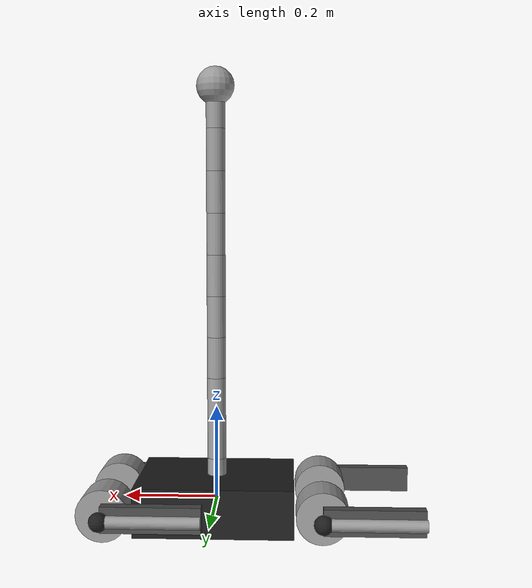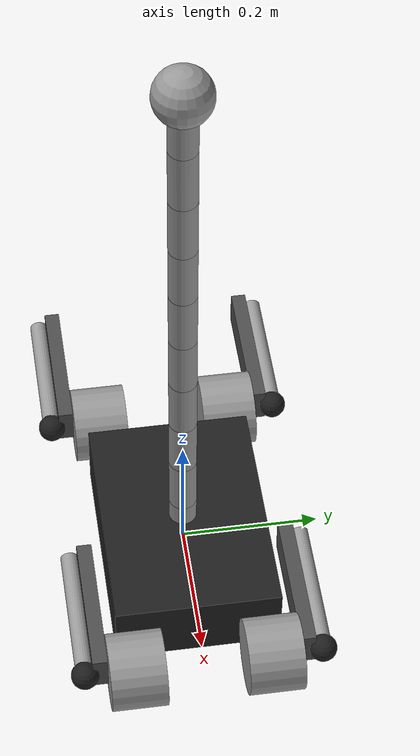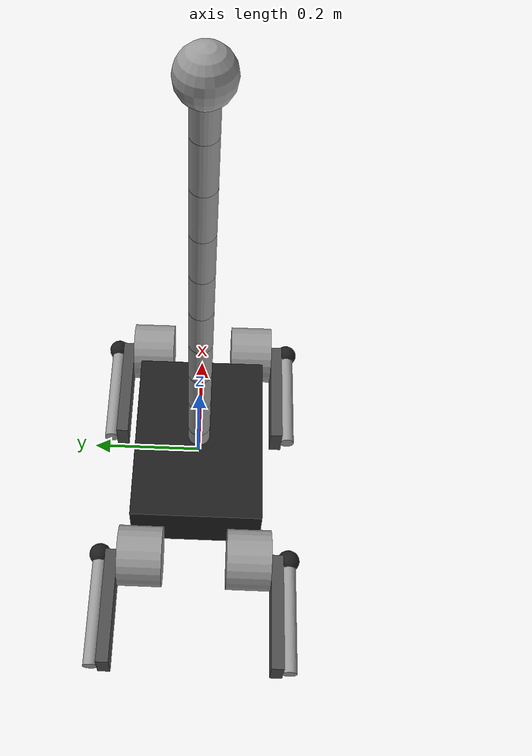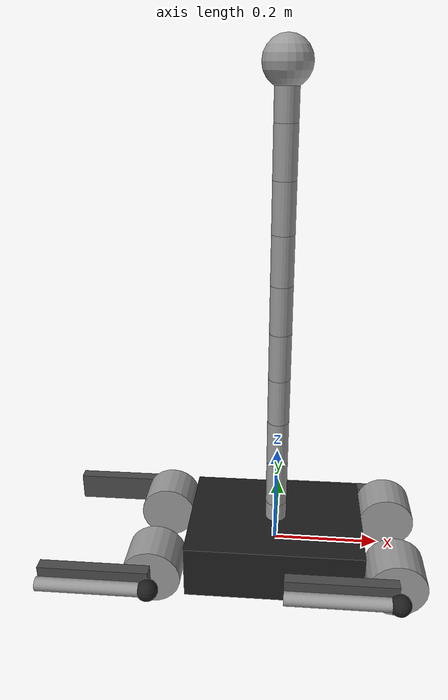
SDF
<sdf version='1.6'>
  <model name='spirit'>
    <link name='body'>
      <pose frame=''>0 0 0 0 -0 0</pose>
      <inertial>
        <pose frame=''>0 0 0 0 -0 0</pose>
        <mass>7.388</mass>
        <inertia>
          <ixx>0.0642435</ixx>
          <ixy>0</ixy>
          <ixz>0</ixz>
          <iyy>0.128487</iyy>
          <iyz>0</iyz>
          <izz>0.128487</izz>
        </inertia>
      </inertial>
      <collision name='body_collision'>
        <pose frame=''>0 0 0 0 -0 0</pose>
        <geometry>
          <box>
            <size>0.335 0.24 0.104</size>
          </box>
        </geometry>
        <surface>
          <contact>
            <ode/>
          </contact>
          <friction>
            <ode/>
          </friction>
        </surface>
      </collision>
      <visual name='body_visual'>
        <pose frame=''>0 0 0 0 -0 0</pose>
        <geometry>
          <box>
            <size>0.335 0.24 0.104</size>
          </box>
        </geometry>
        <material>
          <script>
            <name>Gazebo/Black</name>
            <uri>file://media/materials/scripts/gazebo.material</uri>
          </script>
        </material>
      </visual>
      <gravity>1</gravity>
      <velocity_decay/>
    </link>
    <link name='hip2'>
      <pose frame=''>0.2263 -0.07 0 0 -0 0</pose>
      <inertial>
        <pose frame=''>0 -0.028 0 1.5708 -0 0</pose>
        <mass>0.575</mass>
        <inertia>
          <ixx>0.00074151</ixx>
          <ixy>0</ixy>
          <ixz>0</ixz>
          <iyy>0.00074151</iyy>
          <iyz>0</iyz>
          <izz>0.000869688</izz>
        </inertia>
      </inertial>
      <collision name='hip2_collision'>
        <pose frame=''>0 -0.028 0 1.5708 -0 0</pose>
        <geometry>
          <cylinder>
            <length>0.08</length>
            <radius>0.055</radius>
          </cylinder>
        </geometry>
        <surface>
          <contact>
            <ode/>
          </contact>
          <friction>
            <ode/>
          </friction>
        </surface>
      </collision>
      <visual name='hip2_visual'>
        <pose frame=''>0 -0.028 0 1.5708 -0 0</pose>
        <geometry>
          <cylinder>
            <length>0.08</length>
            <radius>0.055</radius>
          </cylinder>
        </geometry>
        <material>
          <script>
            <name>Gazebo/Grey</name>
            <uri>file://media/materials/scripts/gazebo.material</uri>
          </script>
        </material>
      </visual>
      <gravity>1</gravity>
      <velocity_decay/>
    </link>
    <joint name='10' type='revolute'>
      <child>hip2</child>
      <parent>body</parent>
      <axis>
        <xyz>1 0 0</xyz>
        <limit>
          <lower>-0.707</lower>
          <upper>0.707</upper>
          <effort>21</effort>
          <velocity>37.7</velocity>
        </limit>
        <dynamics>
          <damping>0</damping>
          <friction>0</friction>
          <spring_reference>0</spring_reference>
          <spring_stiffness>0</spring_stiffness>
        </dynamics>
        <use_parent_model_frame>0</use_parent_model_frame>
      </axis>
    </joint>
    <link name='upper2'>
      <pose frame=''>0.2263 -0.17098 0 0 -0 0</pose>
      <inertial>
        <pose frame=''>-0.103 0.022 0 0 -0 0</pose>
        <mass>0.792</mass>
        <inertia>
          <ixx>0.000231594</ixx>
          <ixy>0</ixy>
          <ixz>0</ixz>
          <iyy>0.00300043</iyy>
          <iyz>0</iyz>
          <izz>0.00283272</izz>
        </inertia>
      </inertial>
      <collision name='upper2_collision'>
        <pose frame=''>-0.103 0.022 0 0 -0 0</pose>
        <geometry>
          <box>
            <size>0.206 0.022 0.055</size>
          </box>
        </geometry>
        <surface>
          <contact>
            <ode/>
          </contact>
          <friction>
            <ode/>
          </friction>
        </surface>
      </collision>
      <visual name='upper2_visual'>
        <pose frame=''>-0.103 0.022 0 0 -0 0</pose>
        <geometry>
          <box>
            <size>0.206 0.022 0.055</size>
          </box>
        </geometry>
        <material>
          <script>
            <name>Gazebo/DarkGrey</name>
            <uri>file://media/materials/scripts/gazebo.material</uri>
          </script>
        </material>
      </visual>
      <gravity>1</gravity>
      <velocity_decay/>
      <self_collide>0</self_collide>
    </link>
    <joint name='4' type='revolute'>
      <child>upper2</child>
      <parent>hip2</parent>
      <axis>
        <xyz>0 -1 0</xyz>
        <limit>
          <lower>-1.57</lower>
          <upper>3.14</upper>
          <effort>21</effort>
          <velocity>37.7</velocity>
        </limit>
        <dynamics>
          <damping>0</damping>
          <friction>0</friction>
          <spring_reference>0</spring_reference>
          <spring_stiffness>0</spring_stiffness>
        </dynamics>
        <use_parent_model_frame>0</use_parent_model_frame>
      </axis>
    </joint>
    <link name='lower2'>
      <pose frame=''>0.0203 -0.17098 0 0 -0 0</pose>
      <inertial>
        <pose frame=''>0.103 0 0 0 -0 0</pose>
        <mass>0.075</mass>
        <inertia>
          <ixx>2.19313e-05</ixx>
          <ixy>0</ixy>
          <ixz>0</ixz>
          <iyy>0.000284131</iyy>
          <iyz>0</iyz>
          <izz>0.00026825</izz>
        </inertia>
      </inertial>
      <collision name='lower2_collision'>
        <pose frame=''>0.103 0 0 3.14159 1.57079 3.14159</pose>
        <geometry>
          <cylinder>
            <length>0.206</length>
            <radius>0.013</radius>
          </cylinder>
        </geometry>
        <surface>
          <contact>
            <ode/>
          </contact>
          <friction>
            <ode/>
          </friction>
        </surface>
      </collision>
      <visual name='lower2_visual'>
        <pose frame=''>0.103 0 0 3.14159 1.57079 3.14159</pose>
        <geometry>
          <cylinder>
            <length>0.206</length>
            <radius>0.013</radius>
          </cylinder>
        </geometry>
        <material>
          <script>
            <name>Gazebo/Grey</name>
            <uri>file://media/materials/scripts/gazebo.material</uri>
          </script>
        </material>
      </visual>
      <gravity>1</gravity>
      <velocity_decay/>
    </link>
    <joint name='5' type='revolute'>
      <child>lower2</child>
      <parent>upper2</parent>
      <axis>
        <xyz>0 1 0</xyz>
        <limit>
          <lower>-6.28</lower>
          <upper>6.28</upper>
          <effort>32</effort>
          <velocity>25.1</velocity>
        </limit>
        <dynamics>
          <damping>0</damping>
          <friction>0</friction>
          <spring_reference>0</spring_reference>
          <spring_stiffness>0</spring_stiffness>
        </dynamics>
        <use_parent_model_frame>0</use_parent_model_frame>
      </axis>
    </joint>
    <link name='toe2'>
      <pose frame=''>0.2263 -0.17098 0 0 -0 0</pose>
      <inertial>
        <pose frame=''>0 0 0 0 -0 0</pose>
        <mass>0.015</mass>
        <inertia>
          <ixx>2.5e-05</ixx>
          <ixy>0</ixy>
          <ixz>0</ixz>
          <iyy>2.5e-05</iyy>
          <iyz>0</iyz>
          <izz>2.5e-05</izz>
        </inertia>
      </inertial>
      <collision name='toe2_collision'>
        <pose frame=''>0 0 0 0 -0 0</pose>
        <geometry>
          <sphere>
            <radius>0.02</radius>
          </sphere>
        </geometry>
        <surface>
          <bounce>
            <restitution_coefficient>0</restitution_coefficient>
            <threshold>1e+06</threshold>
          </bounce>
          <friction>
            <torsional>
              <coefficient>0.3</coefficient>
            </torsional>
            <ode>
              <mu>100</mu>
              <mu2>50</mu2>
            </ode>
            <bullet>
              <rolling_friction>0.3</rolling_friction>
              <friction2>50</friction2>
            </bullet>
          </friction>
          <contact>
            <bullet>
              <kp>30000</kp>
              <kd>1000</kd>
              <split_impulse>1</split_impulse>
              <split_impulse_penetration_threshold>-0.01</split_impulse_penetration_threshold>
            </bullet>
            <ode>
              <kp>30000</kp>
              <kd>1000</kd>
            </ode>
          </contact>
        </surface>
      </collision>
      <visual name='toe2_visual'>
        <pose frame=''>0 0 0 0 -0 0</pose>
        <geometry>
          <sphere>
            <radius>0.02</radius>
          </sphere>
        </geometry>
        <material>
          <script>
            <name>Gazebo/Black</name>
            <uri>file://media/materials/scripts/gazebo.material</uri>
          </script>
        </material>
      </visual>
      <velocity_decay/>
      <self_collide>0</self_collide>
      <gravity>1</gravity>
      <velocity_decay/>
      <sensor name='toe2_contact' type='contact'>
        <plugin name='toe2_plugin' filename='libgazebo_ros_bumper.so'>
          <alwaysOn>1</alwaysOn>
          <updateRate>500</updateRate>
          <bumperTopicName>gazebo/toe2_contact_state</bumperTopicName>
          <frameName>world</frameName>
        </plugin>
        <contact>
          <collision>toe2_collision</collision>
          <topic>__default_topic__</topic>
        </contact>
        <update_rate>500</update_rate>
      </sensor>
    </link>
    <joint name='jtoe2' type='fixed'>
      <child>toe2</child>
      <parent>lower2</parent>
      <axis>
        <dynamics>
          <spring_reference>0</spring_reference>
          <spring_stiffness>0</spring_stiffness>
        </dynamics>
        <xyz>0 0 1</xyz>
        <use_parent_model_frame>0</use_parent_model_frame>
        <limit>
          <lower>-1e+16</lower>
          <upper>1e+16</upper>
        </limit>
      </axis>
      <physics>
        <ode>
          <limit>
            <cfm>0</cfm>
            <erp>0.2</erp>
          </limit>
        </ode>
      </physics>
    </joint>
    <link name='hip3'>
      <pose frame=''>-0.2263 -0.07 0 0 -0 0</pose>
      <inertial>
        <pose frame=''>0 -0.028 0 1.5708 -0 0</pose>
        <mass>0.575</mass>
        <inertia>
          <ixx>0.00074151</ixx>
          <ixy>0</ixy>
          <ixz>0</ixz>
          <iyy>0.00074151</iyy>
          <iyz>0</iyz>
          <izz>0.000869688</izz>
        </inertia>
      </inertial>
      <collision name='hip3_collision'>
        <pose frame=''>0 -0.028 0 1.5708 -0 0</pose>
        <geometry>
          <cylinder>
            <length>0.08</length>
            <radius>0.055</radius>
          </cylinder>
        </geometry>
        <surface>
          <contact>
            <ode/>
          </contact>
          <friction>
            <ode/>
          </friction>
        </surface>
      </collision>
      <visual name='hip3_visual'>
        <pose frame=''>0 -0.028 0 1.5708 -0 0</pose>
        <geometry>
          <cylinder>
            <length>0.08</length>
            <radius>0.055</radius>
          </cylinder>
        </geometry>
        <material>
          <script>
            <name>Gazebo/Grey</name>
            <uri>file://media/materials/scripts/gazebo.material</uri>
          </script>
        </material>
      </visual>
      <gravity>1</gravity>
      <velocity_decay/>
    </link>
    <joint name='11' type='revolute'>
      <child>hip3</child>
      <parent>body</parent>
      <axis>
        <xyz>1 0 0</xyz>
        <limit>
          <lower>-0.707</lower>
          <upper>0.707</upper>
          <effort>21</effort>
          <velocity>37.7</velocity>
        </limit>
        <dynamics>
          <damping>0</damping>
          <friction>0</friction>
          <spring_reference>0</spring_reference>
          <spring_stiffness>0</spring_stiffness>
        </dynamics>
        <use_parent_model_frame>0</use_parent_model_frame>
      </axis>
    </joint>
    <link name='upper3'>
      <pose frame=''>-0.2263 -0.17098 0 0 -0 0</pose>
      <inertial>
        <pose frame=''>-0.103 0.022 0 0 -0 0</pose>
        <mass>0.792</mass>
        <inertia>
          <ixx>0.000231594</ixx>
          <ixy>0</ixy>
          <ixz>0</ixz>
          <iyy>0.00300043</iyy>
          <iyz>0</iyz>
          <izz>0.00283272</izz>
        </inertia>
      </inertial>
      <collision name='upper3_collision'>
        <pose frame=''>-0.103 0.022 0 0 -0 0</pose>
        <geometry>
          <box>
            <size>0.206 0.022 0.055</size>
          </box>
        </geometry>
        <surface>
          <contact>
            <ode/>
          </contact>
          <friction>
            <ode/>
          </friction>
        </surface>
      </collision>
      <visual name='upper3_visual'>
        <pose frame=''>-0.103 0.022 0 0 -0 0</pose>
        <geometry>
          <box>
            <size>0.206 0.022 0.055</size>
          </box>
        </geometry>
        <material>
          <script>
            <name>Gazebo/DarkGrey</name>
            <uri>file://media/materials/scripts/gazebo.material</uri>
          </script>
        </material>
      </visual>
      <gravity>1</gravity>
      <velocity_decay/>
      <self_collide>0</self_collide>
    </link>
    <joint name='6' type='revolute'>
      <child>upper3</child>
      <parent>hip3</parent>
      <axis>
        <xyz>0 -1 0</xyz>
        <limit>
          <lower>-1.57</lower>
          <upper>3.14</upper>
          <effort>21</effort>
          <velocity>37.7</velocity>
        </limit>
        <dynamics>
          <damping>0</damping>
          <friction>0</friction>
          <spring_reference>0</spring_reference>
          <spring_stiffness>0</spring_stiffness>
        </dynamics>
        <use_parent_model_frame>0</use_parent_model_frame>
      </axis>
    </joint>
    <link name='lower3'>
      <pose frame=''>-0.4323 -0.17098 0 0 -0 0</pose>
      <inertial>
        <pose frame=''>0.103 0 0 0 -0 0</pose>
        <mass>0.075</mass>
        <inertia>
          <ixx>2.19313e-05</ixx>
          <ixy>0</ixy>
          <ixz>0</ixz>
          <iyy>0.000284131</iyy>
          <iyz>0</iyz>
          <izz>0.00026825</izz>
        </inertia>
      </inertial>
      <collision name='lower3_collision'>
        <pose frame=''>0.103 0 0 3.14159 1.57079 3.14159</pose>
        <geometry>
          <cylinder>
            <length>0.206</length>
            <radius>0.013</radius>
          </cylinder>
        </geometry>
        <surface>
          <contact>
            <ode/>
          </contact>
          <friction>
            <ode/>
          </friction>
        </surface>
      </collision>
      <visual name='lower3_visual'>
        <pose frame=''>0.103 0 0 3.14159 1.57079 3.14159</pose>
        <geometry>
          <cylinder>
            <length>0.206</length>
            <radius>0.013</radius>
          </cylinder>
        </geometry>
        <material>
          <script>
            <name>Gazebo/Grey</name>
            <uri>file://media/materials/scripts/gazebo.material</uri>
          </script>
        </material>
      </visual>
      <gravity>1</gravity>
      <velocity_decay/>
    </link>
    <joint name='7' type='revolute'>
      <child>lower3</child>
      <parent>upper3</parent>
      <axis>
        <xyz>0 1 0</xyz>
        <limit>
          <lower>-6.28</lower>
          <upper>6.28</upper>
          <effort>32</effort>
          <velocity>25.1</velocity>
        </limit>
        <dynamics>
          <damping>0</damping>
          <friction>0</friction>
          <spring_reference>0</spring_reference>
          <spring_stiffness>0</spring_stiffness>
        </dynamics>
        <use_parent_model_frame>0</use_parent_model_frame>
      </axis>
    </joint>
    <link name='toe3'>
      <pose frame=''>-0.2263 -0.17098 0 0 -0 0</pose>
      <inertial>
        <pose frame=''>0 0 0 0 -0 0</pose>
        <mass>0.015</mass>
        <inertia>
          <ixx>2.5e-05</ixx>
          <ixy>0</ixy>
          <ixz>0</ixz>
          <iyy>2.5e-05</iyy>
          <iyz>0</iyz>
          <izz>2.5e-05</izz>
        </inertia>
      </inertial>
      <collision name='toe3_collision'>
        <pose frame=''>0 0 0 0 -0 0</pose>
        <geometry>
          <sphere>
            <radius>0.02</radius>
          </sphere>
        </geometry>
        <surface>
          <bounce>
            <restitution_coefficient>0</restitution_coefficient>
            <threshold>1e+06</threshold>
          </bounce>
          <friction>
            <torsional>
              <coefficient>0.3</coefficient>
            </torsional>
            <ode>
              <mu>100</mu>
              <mu2>50</mu2>
            </ode>
            <bullet>
              <rolling_friction>0.3</rolling_friction>
              <friction2>50</friction2>
            </bullet>
          </friction>
          <contact>
            <bullet>
              <kp>30000</kp>
              <kd>1000</kd>
              <split_impulse>1</split_impulse>
              <split_impulse_penetration_threshold>-0.01</split_impulse_penetration_threshold>
            </bullet>
            <ode>
              <kp>30000</kp>
              <kd>1000</kd>
            </ode>
          </contact>
        </surface>
      </collision>
      <visual name='toe3_visual'>
        <pose frame=''>0 0 0 0 -0 0</pose>
        <geometry>
          <sphere>
            <radius>0.02</radius>
          </sphere>
        </geometry>
        <material>
          <script>
            <name>Gazebo/Black</name>
            <uri>file://media/materials/scripts/gazebo.material</uri>
          </script>
        </material>
      </visual>
      <velocity_decay/>
      <self_collide>0</self_collide>
      <gravity>1</gravity>
      <velocity_decay/>
      <sensor name='toe3_contact' type='contact'>
        <plugin name='toe3_plugin' filename='libgazebo_ros_bumper.so'>
          <alwaysOn>1</alwaysOn>
          <updateRate>500</updateRate>
          <bumperTopicName>gazebo/toe3_contact_state</bumperTopicName>
          <frameName>world</frameName>
        </plugin>
        <contact>
          <collision>toe3_collision</collision>
          <topic>__default_topic__</topic>
        </contact>
        <update_rate>500</update_rate>
      </sensor>
    </link>
    <joint name='jtoe3' type='fixed'>
      <child>toe3</child>
      <parent>lower3</parent>
      <axis>
        <dynamics>
          <spring_reference>0</spring_reference>
          <spring_stiffness>0</spring_stiffness>
        </dynamics>
        <xyz>0 0 1</xyz>
        <use_parent_model_frame>0</use_parent_model_frame>
        <limit>
          <lower>-1e+16</lower>
          <upper>1e+16</upper>
        </limit>
      </axis>
      <physics>
        <ode>
          <limit>
            <cfm>0</cfm>
            <erp>0.2</erp>
          </limit>
        </ode>
      </physics>
    </joint>
    <link name='hip0'>
      <pose frame=''>0.2263 0.07 0 0 -0 0</pose>
      <inertial>
        <pose frame=''>0 0.028 0 1.5708 -0 0</pose>
        <mass>0.575</mass>
        <inertia>
          <ixx>0.00074151</ixx>
          <ixy>0</ixy>
          <ixz>0</ixz>
          <iyy>0.00074151</iyy>
          <iyz>0</iyz>
          <izz>0.000869688</izz>
        </inertia>
      </inertial>
      <collision name='hip0_collision'>
        <pose frame=''>0 0.028 0 1.5708 -0 0</pose>
        <geometry>
          <cylinder>
            <length>0.08</length>
            <radius>0.055</radius>
          </cylinder>
        </geometry>
        <surface>
          <contact>
            <ode/>
          </contact>
          <friction>
            <ode/>
          </friction>
        </surface>
      </collision>
      <visual name='hip0_visual'>
        <pose frame=''>0 0.028 0 1.5708 -0 0</pose>
        <geometry>
          <cylinder>
            <length>0.08</length>
            <radius>0.055</radius>
          </cylinder>
        </geometry>
        <material>
          <script>
            <name>Gazebo/Grey</name>
            <uri>file://media/materials/scripts/gazebo.material</uri>
          </script>
        </material>
      </visual>
      <gravity>1</gravity>
      <velocity_decay/>
    </link>
    <joint name='8' type='revolute'>
      <child>hip0</child>
      <parent>body</parent>
      <axis>
        <xyz>1 0 0</xyz>
        <limit>
          <lower>-0.707</lower>
          <upper>0.707</upper>
          <effort>21</effort>
          <velocity>37.7</velocity>
        </limit>
        <dynamics>
          <damping>0</damping>
          <friction>0</friction>
          <spring_reference>0</spring_reference>
          <spring_stiffness>0</spring_stiffness>
        </dynamics>
        <use_parent_model_frame>0</use_parent_model_frame>
      </axis>
    </joint>
    <link name='upper0'>
      <pose frame=''>0.2263 0.17098 0 0 -0 0</pose>
      <inertial>
        <pose frame=''>-0.103 -0.022 0 0 -0 0</pose>
        <mass>0.792</mass>
        <inertia>
          <ixx>0.000231594</ixx>
          <ixy>0</ixy>
          <ixz>0</ixz>
          <iyy>0.00300043</iyy>
          <iyz>0</iyz>
          <izz>0.00283272</izz>
        </inertia>
      </inertial>
      <collision name='upper0_collision'>
        <pose frame=''>-0.103 -0.022 0 0 -0 0</pose>
        <geometry>
          <box>
            <size>0.206 0.022 0.055</size>
          </box>
        </geometry>
        <surface>
          <contact>
            <ode/>
          </contact>
          <friction>
            <ode/>
          </friction>
        </surface>
      </collision>
      <visual name='upper0_visual'>
        <pose frame=''>-0.103 -0.022 0 0 -0 0</pose>
        <geometry>
          <box>
            <size>0.206 0.022 0.055</size>
          </box>
        </geometry>
        <material>
          <script>
            <name>Gazebo/DarkGrey</name>
            <uri>file://media/materials/scripts/gazebo.material</uri>
          </script>
        </material>
      </visual>
      <gravity>1</gravity>
      <velocity_decay/>
      <self_collide>0</self_collide>
    </link>
    <joint name='0' type='revolute'>
      <child>upper0</child>
      <parent>hip0</parent>
      <axis>
        <xyz>0 -1 0</xyz>
        <limit>
          <lower>-1.57</lower>
          <upper>3.14</upper>
          <effort>21</effort>
          <velocity>37.7</velocity>
        </limit>
        <dynamics>
          <damping>0</damping>
          <friction>0</friction>
          <spring_reference>0</spring_reference>
          <spring_stiffness>0</spring_stiffness>
        </dynamics>
        <use_parent_model_frame>0</use_parent_model_frame>
      </axis>
    </joint>
    <link name='lower0'>
      <pose frame=''>0.0203 0.17098 0 0 -0 0</pose>
      <inertial>
        <pose frame=''>0.103 0 0 0 -0 0</pose>
        <mass>0.075</mass>
        <inertia>
          <ixx>2.19313e-05</ixx>
          <ixy>0</ixy>
          <ixz>0</ixz>
          <iyy>0.000284131</iyy>
          <iyz>0</iyz>
          <izz>0.00026825</izz>
        </inertia>
      </inertial>
      <collision name='lower0_collision'>
        <pose frame=''>0.103 0 0 3.14159 1.57079 3.14159</pose>
        <geometry>
          <cylinder>
            <length>0.206</length>
            <radius>0.013</radius>
          </cylinder>
        </geometry>
        <surface>
          <contact>
            <ode/>
          </contact>
          <friction>
            <ode/>
          </friction>
        </surface>
      </collision>
      <visual name='lower0_visual'>
        <pose frame=''>0.103 0 0 3.14159 1.57079 3.14159</pose>
        <geometry>
          <cylinder>
            <length>0.206</length>
            <radius>0.013</radius>
          </cylinder>
        </geometry>
        <material>
          <script>
            <name>Gazebo/Grey</name>
            <uri>file://media/materials/scripts/gazebo.material</uri>
          </script>
        </material>
      </visual>
      <gravity>1</gravity>
      <velocity_decay/>
    </link>
    <joint name='1' type='revolute'>
      <child>lower0</child>
      <parent>upper0</parent>
      <axis>
        <xyz>0 1 0</xyz>
        <limit>
          <lower>-6.28</lower>
          <upper>6.28</upper>
          <effort>32</effort>
          <velocity>25.1</velocity>
        </limit>
        <dynamics>
          <damping>0</damping>
          <friction>0</friction>
          <spring_reference>0</spring_reference>
          <spring_stiffness>0</spring_stiffness>
        </dynamics>
        <use_parent_model_frame>0</use_parent_model_frame>
      </axis>
    </joint>
    <link name='toe0'>
      <pose frame=''>0.2263 0.17098 0 0 -0 0</pose>
      <inertial>
        <pose frame=''>0 0 0 0 -0 0</pose>
        <mass>0.015</mass>
        <inertia>
          <ixx>2.5e-05</ixx>
          <ixy>0</ixy>
          <ixz>0</ixz>
          <iyy>2.5e-05</iyy>
          <iyz>0</iyz>
          <izz>2.5e-05</izz>
        </inertia>
      </inertial>
      <collision name='toe0_collision'>
        <pose frame=''>0 0 0 0 -0 0</pose>
        <geometry>
          <sphere>
            <radius>0.02</radius>
          </sphere>
        </geometry>
        <surface>
          <bounce>
            <restitution_coefficient>0</restitution_coefficient>
            <threshold>1e+06</threshold>
          </bounce>
          <friction>
            <torsional>
              <coefficient>0.3</coefficient>
            </torsional>
            <ode>
              <mu>100</mu>
              <mu2>50</mu2>
            </ode>
            <bullet>
              <rolling_friction>0.3</rolling_friction>
              <friction2>50</friction2>
            </bullet>
          </friction>
          <contact>
            <bullet>
              <kp>30000</kp>
              <kd>1000</kd>
              <split_impulse>1</split_impulse>
              <split_impulse_penetration_threshold>-0.01</split_impulse_penetration_threshold>
            </bullet>
            <ode>
              <kp>30000</kp>
              <kd>1000</kd>
            </ode>
          </contact>
        </surface>
      </collision>
      <visual name='toe0_visual'>
        <pose frame=''>0 0 0 0 -0 0</pose>
        <geometry>
          <sphere>
            <radius>0.02</radius>
          </sphere>
        </geometry>
        <material>
          <script>
            <name>Gazebo/Black</name>
            <uri>file://media/materials/scripts/gazebo.material</uri>
          </script>
        </material>
      </visual>
      <velocity_decay/>
      <self_collide>0</self_collide>
      <gravity>1</gravity>
      <velocity_decay/>
      <sensor name='toe0_contact' type='contact'>
        <plugin name='toe0_plugin' filename='libgazebo_ros_bumper.so'>
          <alwaysOn>1</alwaysOn>
          <updateRate>500</updateRate>
          <bumperTopicName>gazebo/toe0_contact_state</bumperTopicName>
          <frameName>world</frameName>
        </plugin>
        <contact>
          <collision>toe0_collision</collision>
          <topic>__default_topic__</topic>
        </contact>
        <update_rate>500</update_rate>
      </sensor>
    </link>
    <joint name='jtoe0' type='fixed'>
      <child>toe0</child>
      <parent>lower0</parent>
      <axis>
        <dynamics>
          <spring_reference>0</spring_reference>
          <spring_stiffness>0</spring_stiffness>
        </dynamics>
        <xyz>0 0 1</xyz>
        <use_parent_model_frame>0</use_parent_model_frame>
        <limit>
          <lower>-1e+16</lower>
          <upper>1e+16</upper>
        </limit>
      </axis>
      <physics>
        <ode>
          <limit>
            <cfm>0</cfm>
            <erp>0.2</erp>
          </limit>
        </ode>
      </physics>
    </joint>
    <link name='hip1'>
      <pose frame=''>-0.2263 0.07 0 0 -0 0</pose>
      <inertial>
        <pose frame=''>0 0.028 0 1.5708 -0 0</pose>
        <mass>0.575</mass>
        <inertia>
          <ixx>0.00074151</ixx>
          <ixy>0</ixy>
          <ixz>0</ixz>
          <iyy>0.00074151</iyy>
          <iyz>0</iyz>
          <izz>0.000869688</izz>
        </inertia>
      </inertial>
      <collision name='hip1_collision'>
        <pose frame=''>0 0.028 0 1.5708 -0 0</pose>
        <geometry>
          <cylinder>
            <length>0.08</length>
            <radius>0.055</radius>
          </cylinder>
        </geometry>
        <surface>
          <contact>
            <ode/>
          </contact>
          <friction>
            <ode/>
          </friction>
        </surface>
      </collision>
      <visual name='hip1_visual'>
        <pose frame=''>0 0.028 0 1.5708 -0 0</pose>
        <geometry>
          <cylinder>
            <length>0.08</length>
            <radius>0.055</radius>
          </cylinder>
        </geometry>
        <material>
          <script>
            <name>Gazebo/Grey</name>
            <uri>file://media/materials/scripts/gazebo.material</uri>
          </script>
        </material>
      </visual>
      <gravity>1</gravity>
      <velocity_decay/>
    </link>
    <joint name='9' type='revolute'>
      <child>hip1</child>
      <parent>body</parent>
      <axis>
        <xyz>1 0 0</xyz>
        <limit>
          <lower>-0.707</lower>
          <upper>0.707</upper>
          <effort>21</effort>
          <velocity>37.7</velocity>
        </limit>
        <dynamics>
          <damping>0</damping>
          <friction>0</friction>
          <spring_reference>0</spring_reference>
          <spring_stiffness>0</spring_stiffness>
        </dynamics>
        <use_parent_model_frame>0</use_parent_model_frame>
      </axis>
    </joint>
    <link name='upper1'>
      <pose frame=''>-0.2263 0.17098 0 0 -0 0</pose>
      <inertial>
        <pose frame=''>-0.103 -0.022 0 0 -0 0</pose>
        <mass>0.792</mass>
        <inertia>
          <ixx>0.000231594</ixx>
          <ixy>0</ixy>
          <ixz>0</ixz>
          <iyy>0.00300043</iyy>
          <iyz>0</iyz>
          <izz>0.00283272</izz>
        </inertia>
      </inertial>
      <collision name='upper1_collision'>
        <pose frame=''>-0.103 -0.022 0 0 -0 0</pose>
        <geometry>
          <box>
            <size>0.206 0.022 0.055</size>
          </box>
        </geometry>
        <surface>
          <contact>
            <ode/>
          </contact>
          <friction>
            <ode/>
          </friction>
        </surface>
      </collision>
      <visual name='upper1_visual'>
        <pose frame=''>-0.103 -0.022 0 0 -0 0</pose>
        <geometry>
          <box>
            <size>0.206 0.022 0.055</size>
          </box>
        </geometry>
        <material>
          <script>
            <name>Gazebo/DarkGrey</name>
            <uri>file://media/materials/scripts/gazebo.material</uri>
          </script>
        </material>
      </visual>
      <gravity>1</gravity>
      <velocity_decay/>
      <self_collide>0</self_collide>
    </link>
    <joint name='2' type='revolute'>
      <child>upper1</child>
      <parent>hip1</parent>
      <axis>
        <xyz>0 -1 0</xyz>
        <limit>
          <lower>-1.57</lower>
          <upper>3.14</upper>
          <effort>21</effort>
          <velocity>37.7</velocity>
        </limit>
        <dynamics>
          <damping>0</damping>
          <friction>0</friction>
          <spring_reference>0</spring_reference>
          <spring_stiffness>0</spring_stiffness>
        </dynamics>
        <use_parent_model_frame>0</use_parent_model_frame>
      </axis>
    </joint>
    <link name='lower1'>
      <pose frame=''>-0.4323 0.17098 0 0 -0 0</pose>
      <inertial>
        <pose frame=''>0.103 0 0 0 -0 0</pose>
        <mass>0.075</mass>
        <inertia>
          <ixx>2.19313e-05</ixx>
          <ixy>0</ixy>
          <ixz>0</ixz>
          <iyy>0.000284131</iyy>
          <iyz>0</iyz>
          <izz>0.00026825</izz>
        </inertia>
      </inertial>
      <collision name='lower1_collision'>
        <pose frame=''>0.103 0 0 3.14159 1.57079 3.14159</pose>
        <geometry>
          <cylinder>
            <length>0.206</length>
            <radius>0.013</radius>
          </cylinder>
        </geometry>
        <surface>
          <contact>
            <ode/>
          </contact>
          <friction>
            <ode/>
          </friction>
        </surface>
      </collision>
      <visual name='lower1_visual'>
        <pose frame=''>0.103 0 0 3.14159 1.57079 3.14159</pose>
        <geometry>
          <cylinder>
            <length>0.206</length>
            <radius>0.013</radius>
          </cylinder>
        </geometry>
        <material>
          <script>
            <name>Gazebo/Grey</name>
            <uri>file://media/materials/scripts/gazebo.material</uri>
          </script>
        </material>
      </visual>
      <gravity>1</gravity>
      <velocity_decay/>
    </link>
    <joint name='3' type='revolute'>
      <child>lower1</child>
      <parent>upper1</parent>
      <axis>
        <xyz>0 1 0</xyz>
        <limit>
          <lower>-6.28</lower>
          <upper>6.28</upper>
          <effort>32</effort>
          <velocity>25.1</velocity>
        </limit>
        <dynamics>
          <damping>0</damping>
          <friction>0</friction>
          <spring_reference>0</spring_reference>
          <spring_stiffness>0</spring_stiffness>
        </dynamics>
        <use_parent_model_frame>0</use_parent_model_frame>
      </axis>
    </joint>
    <link name='toe1'>
      <pose frame=''>-0.2263 0.17098 0 0 -0 0</pose>
      <inertial>
        <pose frame=''>0 0 0 0 -0 0</pose>
        <mass>0.015</mass>
        <inertia>
          <ixx>2.5e-05</ixx>
          <ixy>0</ixy>
          <ixz>0</ixz>
          <iyy>2.5e-05</iyy>
          <iyz>0</iyz>
          <izz>2.5e-05</izz>
        </inertia>
      </inertial>
      <collision name='toe1_collision'>
        <pose frame=''>0 0 0 0 -0 0</pose>
        <geometry>
          <sphere>
            <radius>0.02</radius>
          </sphere>
        </geometry>
        <surface>
          <bounce>
            <restitution_coefficient>0</restitution_coefficient>
            <threshold>1e+06</threshold>
          </bounce>
          <friction>
            <torsional>
              <coefficient>0.3</coefficient>
            </torsional>
            <ode>
              <mu>100</mu>
              <mu2>50</mu2>
            </ode>
            <bullet>
              <rolling_friction>0.3</rolling_friction>
              <friction2>50</friction2>
            </bullet>
          </friction>
          <contact>
            <bullet>
              <kp>30000</kp>
              <kd>1000</kd>
              <split_impulse>1</split_impulse>
              <split_impulse_penetration_threshold>-0.01</split_impulse_penetration_threshold>
            </bullet>
            <ode>
              <kp>30000</kp>
              <kd>1000</kd>
            </ode>
          </contact>
        </surface>
      </collision>
      <visual name='toe1_visual'>
        <pose frame=''>0 0 0 0 -0 0</pose>
        <geometry>
          <sphere>
            <radius>0.02</radius>
          </sphere>
        </geometry>
        <material>
          <script>
            <name>Gazebo/Black</name>
            <uri>file://media/materials/scripts/gazebo.material</uri>
          </script>
        </material>
      </visual>
      <velocity_decay/>
      <self_collide>0</self_collide>
      <gravity>1</gravity>
      <velocity_decay/>
      <sensor name='toe1_contact' type='contact'>
        <plugin name='toe1_plugin' filename='libgazebo_ros_bumper.so'>
          <alwaysOn>1</alwaysOn>
          <updateRate>500</updateRate>
          <bumperTopicName>gazebo/toe1_contact_state</bumperTopicName>
          <frameName>world</frameName>
        </plugin>
        <contact>
          <collision>toe1_collision</collision>
          <topic>__default_topic__</topic>
        </contact>
        <update_rate>500</update_rate>
      </sensor>
    </link>
    <joint name='jtoe1' type='fixed'>
      <child>toe1</child>
      <parent>lower1</parent>
      <axis>
        <dynamics>
          <spring_reference>0</spring_reference>
          <spring_stiffness>0</spring_stiffness>
        </dynamics>
        <xyz>0 0 1</xyz>
        <use_parent_model_frame>0</use_parent_model_frame>
        <limit>
          <lower>-1e+16</lower>
          <upper>1e+16</upper>
        </limit>
      </axis>
      <physics>
        <ode>
          <limit>
            <cfm>0</cfm>
            <erp>0.2</erp>
          </limit>
        </ode>
      </physics>
    </joint>
    <link name='tail_link_0'>
      <pose frame=''>0 0 0 0 -0 0</pose>
      <inertial>
        <pose frame=''>0 0 0.04408 0 -0 0</pose>
        <mass>0.001</mass>
        <inertia>
          <ixx>1e-06</ixx>
          <ixy>0</ixy>
          <ixz>0</ixz>
          <iyy>1e-06</iyy>
          <iyz>0</iyz>
          <izz>1e-06</izz>
        </inertia>
      </inertial>
      <visual name='tail_link_0_visual'>
        <pose frame=''>0 0 0.04408 0 -0 0</pose>
        <geometry>
          <cylinder>
            <length>0.08816</length>
            <radius>0.02</radius>
          </cylinder>
        </geometry>
        <material>
          <script>
            <name>Gazebo/Gray</name>
            <uri>file://media/materials/scripts/gazebo.material</uri>
          </script>
        </material>
      </visual>
      <gravity>1</gravity>
      <velocity_decay/>
    </link>
    <joint name='body_tail_joint_0' type='revolute'>
      <child>tail_link_0</child>
      <parent>body</parent>
      <axis>
        <xyz>0 1 0</xyz>
        <limit>
          <lower>-1.57</lower>
          <upper>1.57</upper>
          <effort>50</effort>
          <velocity>40</velocity>
        </limit>
        <dynamics>
          <damping>0</damping>
          <friction>0</friction>
          <spring_reference>0</spring_reference>
          <spring_stiffness>0</spring_stiffness>
        </dynamics>
        <use_parent_model_frame>0</use_parent_model_frame>
      </axis>
    </joint>
    <link name='tail_link_1'>
      <pose frame=''>0 0 0.08816 0 -0 0</pose>
      <inertial>
        <pose frame=''>0 0 0.04408 0 -0 0</pose>
        <mass>0.001</mass>
        <inertia>
          <ixx>1e-06</ixx>
          <ixy>0</ixy>
          <ixz>0</ixz>
          <iyy>1e-06</iyy>
          <iyz>0</iyz>
          <izz>1e-06</izz>
        </inertia>
      </inertial>
      <visual name='tail_link_1_visual'>
        <pose frame=''>0 0 0.04408 0 -0 0</pose>
        <geometry>
          <cylinder>
            <length>0.08816</length>
            <radius>0.02</radius>
          </cylinder>
        </geometry>
        <material>
          <script>
            <name>Gazebo/Gray</name>
            <uri>file://media/materials/scripts/gazebo.material</uri>
          </script>
        </material>
      </visual>
      <gravity>1</gravity>
      <velocity_decay/>
    </link>
    <joint name='body_tail_joint_1' type='revolute'>
      <child>tail_link_1</child>
      <parent>tail_link_0</parent>
      <axis>
        <xyz>0 1 0</xyz>
        <limit>
          <lower>-1.57</lower>
          <upper>1.57</upper>
          <effort>50</effort>
          <velocity>40</velocity>
        </limit>
        <dynamics>
          <damping>0</damping>
          <friction>0</friction>
          <spring_reference>0</spring_reference>
          <spring_stiffness>0</spring_stiffness>
        </dynamics>
        <use_parent_model_frame>0</use_parent_model_frame>
      </axis>
    </joint>
    <link name='tail_link_2'>
      <pose frame=''>0 0 0.17632 0 -0 0</pose>
      <inertial>
        <pose frame=''>0 0 0.04408 0 -0 0</pose>
        <mass>0.001</mass>
        <inertia>
          <ixx>1e-06</ixx>
          <ixy>0</ixy>
          <ixz>0</ixz>
          <iyy>1e-06</iyy>
          <iyz>0</iyz>
          <izz>1e-06</izz>
        </inertia>
      </inertial>
      <visual name='tail_link_2_visual'>
        <pose frame=''>0 0 0.04408 0 -0 0</pose>
        <geometry>
          <cylinder>
            <length>0.08816</length>
            <radius>0.02</radius>
          </cylinder>
        </geometry>
        <material>
          <script>
            <name>Gazebo/Gray</name>
            <uri>file://media/materials/scripts/gazebo.material</uri>
          </script>
        </material>
      </visual>
      <gravity>1</gravity>
      <velocity_decay/>
    </link>
    <joint name='body_tail_joint_2' type='revolute'>
      <child>tail_link_2</child>
      <parent>tail_link_1</parent>
      <axis>
        <xyz>0 1 0</xyz>
        <limit>
          <lower>-1.57</lower>
          <upper>1.57</upper>
          <effort>50</effort>
          <velocity>40</velocity>
        </limit>
        <dynamics>
          <damping>0</damping>
          <friction>0</friction>
          <spring_reference>0</spring_reference>
          <spring_stiffness>0</spring_stiffness>
        </dynamics>
        <use_parent_model_frame>0</use_parent_model_frame>
      </axis>
    </joint>
    <link name='tail_link_3'>
      <pose frame=''>0 0 0.26448 0 -0 0</pose>
      <inertial>
        <pose frame=''>0 0 0.04408 0 -0 0</pose>
        <mass>0.001</mass>
        <inertia>
          <ixx>1e-06</ixx>
          <ixy>0</ixy>
          <ixz>0</ixz>
          <iyy>1e-06</iyy>
          <iyz>0</iyz>
          <izz>1e-06</izz>
        </inertia>
      </inertial>
      <visual name='tail_link_3_visual'>
        <pose frame=''>0 0 0.04408 0 -0 0</pose>
        <geometry>
          <cylinder>
            <length>0.08816</length>
            <radius>0.02</radius>
          </cylinder>
        </geometry>
        <material>
          <script>
            <name>Gazebo/Gray</name>
            <uri>file://media/materials/scripts/gazebo.material</uri>
          </script>
        </material>
      </visual>
      <gravity>1</gravity>
      <velocity_decay/>
    </link>
    <joint name='body_tail_joint_3' type='revolute'>
      <child>tail_link_3</child>
      <parent>tail_link_2</parent>
      <axis>
        <xyz>0 1 0</xyz>
        <limit>
          <lower>-1.57</lower>
          <upper>1.57</upper>
          <effort>50</effort>
          <velocity>40</velocity>
        </limit>
        <dynamics>
          <damping>0</damping>
          <friction>0</friction>
          <spring_reference>0</spring_reference>
          <spring_stiffness>0</spring_stiffness>
        </dynamics>
        <use_parent_model_frame>0</use_parent_model_frame>
      </axis>
    </joint>
    <link name='tail_link_4'>
      <pose frame=''>0 0 0.35264 0 -0 0</pose>
      <inertial>
        <pose frame=''>0 0 0.04408 0 -0 0</pose>
        <mass>0.001</mass>
        <inertia>
          <ixx>1e-06</ixx>
          <ixy>0</ixy>
          <ixz>0</ixz>
          <iyy>1e-06</iyy>
          <iyz>0</iyz>
          <izz>1e-06</izz>
        </inertia>
      </inertial>
      <visual name='tail_link_4_visual'>
        <pose frame=''>0 0 0.04408 0 -0 0</pose>
        <geometry>
          <cylinder>
            <length>0.08816</length>
            <radius>0.02</radius>
          </cylinder>
        </geometry>
        <material>
          <script>
            <name>Gazebo/Gray</name>
            <uri>file://media/materials/scripts/gazebo.material</uri>
          </script>
        </material>
      </visual>
      <gravity>1</gravity>
      <velocity_decay/>
    </link>
    <joint name='body_tail_joint_4' type='revolute'>
      <child>tail_link_4</child>
      <parent>tail_link_3</parent>
      <axis>
        <xyz>0 1 0</xyz>
        <limit>
          <lower>-1.57</lower>
          <upper>1.57</upper>
          <effort>50</effort>
          <velocity>40</velocity>
        </limit>
        <dynamics>
          <damping>0</damping>
          <friction>0</friction>
          <spring_reference>0</spring_reference>
          <spring_stiffness>0</spring_stiffness>
        </dynamics>
        <use_parent_model_frame>0</use_parent_model_frame>
      </axis>
    </joint>
    <link name='tail_link_5'>
      <pose frame=''>0 0 0.4408 0 -0 0</pose>
      <inertial>
        <pose frame=''>0 0 0.04408 0 -0 0</pose>
        <mass>0.001</mass>
        <inertia>
          <ixx>1e-06</ixx>
          <ixy>0</ixy>
          <ixz>0</ixz>
          <iyy>1e-06</iyy>
          <iyz>0</iyz>
          <izz>1e-06</izz>
        </inertia>
      </inertial>
      <visual name='tail_link_5_visual'>
        <pose frame=''>0 0 0.04408 0 -0 0</pose>
        <geometry>
          <cylinder>
            <length>0.08816</length>
            <radius>0.02</radius>
          </cylinder>
        </geometry>
        <material>
          <script>
            <name>Gazebo/Gray</name>
            <uri>file://media/materials/scripts/gazebo.material</uri>
          </script>
        </material>
      </visual>
      <gravity>1</gravity>
      <velocity_decay/>
    </link>
    <joint name='body_tail_joint_5' type='revolute'>
      <child>tail_link_5</child>
      <parent>tail_link_4</parent>
      <axis>
        <xyz>0 1 0</xyz>
        <limit>
          <lower>-1.57</lower>
          <upper>1.57</upper>
          <effort>50</effort>
          <velocity>40</velocity>
        </limit>
        <dynamics>
          <damping>0</damping>
          <friction>0</friction>
          <spring_reference>0</spring_reference>
          <spring_stiffness>0</spring_stiffness>
        </dynamics>
        <use_parent_model_frame>0</use_parent_model_frame>
      </axis>
    </joint>
    <link name='tail_link_6'>
      <pose frame=''>0 0 0.52896 0 -0 0</pose>
      <inertial>
        <pose frame=''>0 0 0.04408 0 -0 0</pose>
        <mass>0.001</mass>
        <inertia>
          <ixx>1e-06</ixx>
          <ixy>0</ixy>
          <ixz>0</ixz>
          <iyy>1e-06</iyy>
          <iyz>0</iyz>
          <izz>1e-06</izz>
        </inertia>
      </inertial>
      <visual name='tail_link_6_visual'>
        <pose frame=''>0 0 0.04408 0 -0 0</pose>
        <geometry>
          <cylinder>
            <length>0.08816</length>
            <radius>0.02</radius>
          </cylinder>
        </geometry>
        <material>
          <script>
            <name>Gazebo/Gray</name>
            <uri>file://media/materials/scripts/gazebo.material</uri>
          </script>
        </material>
      </visual>
      <gravity>1</gravity>
      <velocity_decay/>
    </link>
    <joint name='body_tail_joint_6' type='revolute'>
      <child>tail_link_6</child>
      <parent>tail_link_5</parent>
      <axis>
        <xyz>0 1 0</xyz>
        <limit>
          <lower>-1.57</lower>
          <upper>1.57</upper>
          <effort>50</effort>
          <velocity>40</velocity>
        </limit>
        <dynamics>
          <damping>0</damping>
          <friction>0</friction>
          <spring_reference>0</spring_reference>
          <spring_stiffness>0</spring_stiffness>
        </dynamics>
        <use_parent_model_frame>0</use_parent_model_frame>
      </axis>
    </joint>
    <link name='tail_link_7'>
      <pose frame=''>0 0 0.61712 0 -0 0</pose>
      <inertial>
        <pose frame=''>0 0 0.04408 0 -0 0</pose>
        <mass>0.001</mass>
        <inertia>
          <ixx>1e-06</ixx>
          <ixy>0</ixy>
          <ixz>0</ixz>
          <iyy>1e-06</iyy>
          <iyz>0</iyz>
          <izz>1e-06</izz>
        </inertia>
      </inertial>
      <visual name='tail_link_7_visual'>
        <pose frame=''>0 0 0.04408 0 -0 0</pose>
        <geometry>
          <cylinder>
            <length>0.08816</length>
            <radius>0.02</radius>
          </cylinder>
        </geometry>
        <material>
          <script>
            <name>Gazebo/Gray</name>
            <uri>file://media/materials/scripts/gazebo.material</uri>
          </script>
        </material>
      </visual>
      <gravity>1</gravity>
      <velocity_decay/>
    </link>
    <joint name='body_tail_joint_7' type='revolute'>
      <child>tail_link_7</child>
      <parent>tail_link_6</parent>
      <axis>
        <xyz>0 1 0</xyz>
        <limit>
          <lower>-1.57</lower>
          <upper>1.57</upper>
          <effort>50</effort>
          <velocity>40</velocity>
        </limit>
        <dynamics>
          <damping>0</damping>
          <friction>0</friction>
          <spring_reference>0</spring_reference>
          <spring_stiffness>0</spring_stiffness>
        </dynamics>
        <use_parent_model_frame>0</use_parent_model_frame>
      </axis>
    </joint>
    <link name='tail_link_8'>
      <pose frame=''>0 0 0.70528 0 -0 0</pose>
      <inertial>
        <pose frame=''>0 0 0.04408 0 -0 0</pose>
        <mass>0.001</mass>
        <inertia>
          <ixx>1e-06</ixx>
          <ixy>0</ixy>
          <ixz>0</ixz>
          <iyy>1e-06</iyy>
          <iyz>0</iyz>
          <izz>1e-06</izz>
        </inertia>
      </inertial>
      <visual name='tail_link_8_visual'>
        <pose frame=''>0 0 0.04408 0 -0 0</pose>
        <geometry>
          <cylinder>
            <length>0.08816</length>
            <radius>0.02</radius>
          </cylinder>
        </geometry>
        <material>
          <script>
            <name>Gazebo/Gray</name>
            <uri>file://media/materials/scripts/gazebo.material</uri>
          </script>
        </material>
      </visual>
      <gravity>1</gravity>
      <velocity_decay/>
    </link>
    <joint name='body_tail_joint_8' type='revolute'>
      <child>tail_link_8</child>
      <parent>tail_link_7</parent>
      <axis>
        <xyz>0 1 0</xyz>
        <limit>
          <lower>-1.57</lower>
          <upper>1.57</upper>
          <effort>50</effort>
          <velocity>40</velocity>
        </limit>
        <dynamics>
          <damping>0</damping>
          <friction>0</friction>
          <spring_reference>0</spring_reference>
          <spring_stiffness>0</spring_stiffness>
        </dynamics>
        <use_parent_model_frame>0</use_parent_model_frame>
      </axis>
    </joint>
    <link name='tail_link_9'>
      <pose frame=''>0 0 0.79344 0 -0 0</pose>
      <inertial>
        <pose frame=''>0 0 0.088001 0 -0 0</pose>
        <mass>0.2774</mass>
        <inertia>
          <ixx>0.000279336</ixx>
          <ixy>0</ixy>
          <ixz>0</ixz>
          <iyy>0.000279336</iyy>
          <iyz>0</iyz>
          <izz>0.0002774</izz>
        </inertia>
      </inertial>
      <collision name='tail_link_9_fixed_joint_lump__tail_mass_collision'>
        <pose frame=''>0 0 0.08816 0 -0 0</pose>
        <geometry>
          <sphere>
            <radius>0.04</radius>
          </sphere>
        </geometry>
        <surface>
          <contact>
            <ode/>
          </contact>
          <friction>
            <ode/>
          </friction>
        </surface>
      </collision>
      <visual name='tail_link_9_visual'>
        <pose frame=''>0 0 0.04408 0 -0 0</pose>
        <geometry>
          <cylinder>
            <length>0.08816</length>
            <radius>0.02</radius>
          </cylinder>
        </geometry>
        <material>
          <script>
            <name>Gazebo/Gray</name>
            <uri>file://media/materials/scripts/gazebo.material</uri>
          </script>
        </material>
      </visual>
      <visual name='tail_link_9_fixed_joint_lump__tail_mass_visual_1'>
        <pose frame=''>0 0 0.08816 0 -0 0</pose>
        <geometry>
          <sphere>
            <radius>0.04</radius>
          </sphere>
        </geometry>
        <material>
          <script>
            <name>Gazebo/Gray</name>
            <uri>file://media/materials/scripts/gazebo.material</uri>
          </script>
        </material>
      </visual>
      <velocity_decay/>
      <gravity>1</gravity>
      <velocity_decay/>
    </link>
    <joint name='body_tail_joint_9' type='revolute'>
      <child>tail_link_9</child>
      <parent>tail_link_8</parent>
      <axis>
        <xyz>0 1 0</xyz>
        <limit>
          <lower>-1.57</lower>
          <upper>1.57</upper>
          <effort>50</effort>
          <velocity>40</velocity>
        </limit>
        <dynamics>
          <damping>0</damping>
          <friction>0</friction>
          <spring_reference>0</spring_reference>
          <spring_stiffness>0</spring_stiffness>
        </dynamics>
        <use_parent_model_frame>0</use_parent_model_frame>
      </axis>
    </joint>
    <static>0</static>
    <plugin name='gazebo_ros_control' filename='libgazebo_ros_control.so'>
      <robotNamespace>/spirit</robotNamespace>
      <controlPeriod>0.002</controlPeriod>
    </plugin>
    <plugin name='ground_truth_estimator' filename='libground_truth_estimator.so'>
      <updateRateHz>500.0</updateRateHz>
    </plugin>
  </model>
</sdf>
